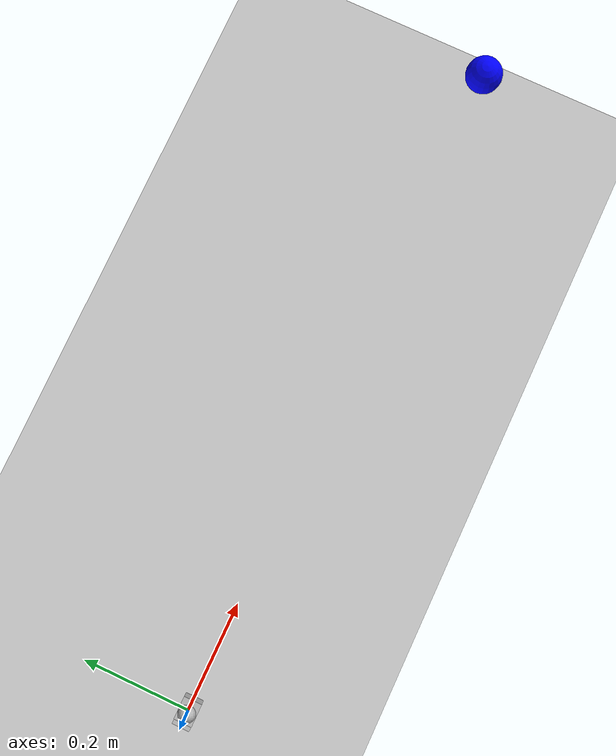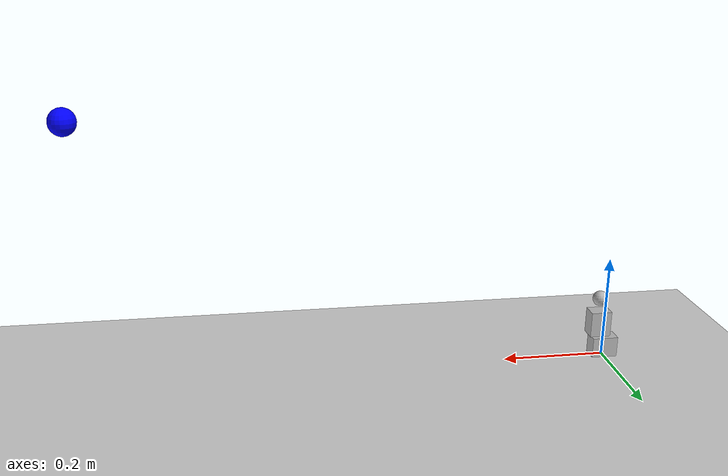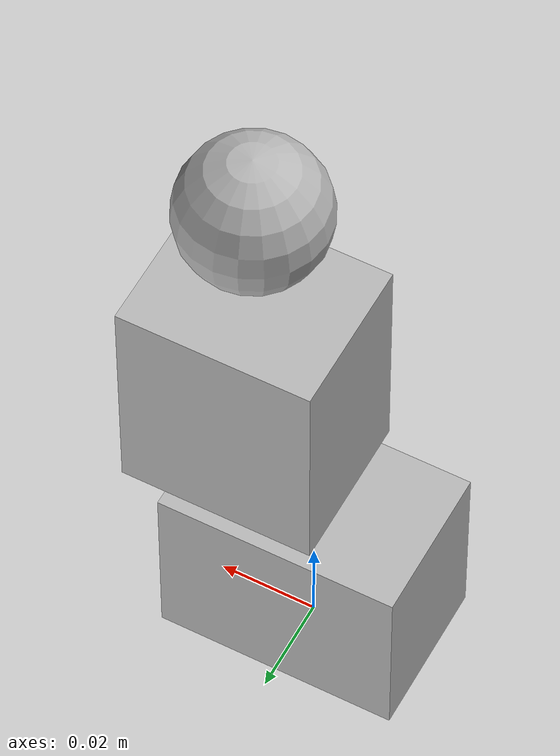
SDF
<?xml version="1.0"?>
<sdf version="1.4">
  <world name="default">
    <!-- Ground Plane -->
    <include>
      <uri>model://ground_plane</uri>
    </include>

    <include>
      <uri>model://sun</uri>
    </include>

    <!-- Robot -->
    <model name="pan_tilt">
      <static>false</static>
      <pose>0 0 0 0 0 0</pose>

      <link name="l_pan">
        <pose>0 0 0 0 0 0</pose>
        <inertial>
          <pose>0 0 0 0 0 0</pose>
          <mass>10000</mass>
        </inertial>
        <visual name="visual">
          <pose>0 0 0.020 0 0 0</pose>
          <geometry>
            <box><size>0.050 0.032 0.040</size></box>
          </geometry>
        </visual>
        <collision name="collision">
          <pose>0 0 0.020 0 0 0</pose>
          <geometry>
            <box><size>0.050 0.032 0.040</size></box>
          </geometry>
        </collision>
      </link>
      <link name="l_tilt">
        <pose>0.0125 0 0.045 0 0 0</pose>
        <inertial><mass>50</mass></inertial>
        <visual name="visual">
          <pose>0 0 0.025 0 0 0</pose>
          <geometry>
            <box><size>0.040 0.032 0.050</size></box>
          </geometry>
        </visual>
        <collision name="collision">
          <pose>0 0 0.025 0 0 0</pose>
          <geometry>
            <box><size>0.040 0.032 0.050</size></box>
          </geometry>
        </collision>
      </link>

      <link name="l_camera">
        <pose>0.0125 0 0.120 0 0 0</pose>
        <inertial><mass>0.01</mass></inertial>
        <visual name="visual">
          <pose>0 0 0 0 0 0</pose>
          <geometry>
            <sphere><radius>0.015</radius></sphere>
          </geometry>
        </visual>
        <collision name="collision">
          <pose>0 0 0 0 0 0</pose>
          <geometry>
            <sphere><radius>0.015</radius></sphere>
          </geometry>
        </collision>

        <sensor name="camera" type="camera">
          <camera>
            <horizontal_fov>1.047</horizontal_fov>
            <image>
              <width>320</width>
              <height>240</height>
            </image>
            <clip>
              <near>0.1</near>
              <far>100</far>
            </clip>
          </camera>
          <always_on>1</always_on>
          <update_rate>30</update_rate>
          <visualize>true</visualize>
        </sensor>
      </link>

      <joint type="revolute" name="j_pan">
        <pose>0.0125 0 0.040 0 0 0</pose>
        <parent>l_pan</parent>
        <child>l_tilt</child>
        <axis>
          <xyz>0 0 1</xyz>
          <limit>
            <upper>2.0943951023931954923084289221863</upper>  <!--  120 deg -->
            <lower>-2.0943951023931954923084289221863</lower> <!-- -120 deg -->
          </limit>
        </axis>
      </joint>
      <joint type="revolute" name="j_tilt">
        <pose>0 0 0.0375 0 0 0</pose>
        <parent>l_tilt</parent>
        <child>l_camera</child>
        <axis>
          <xyz>0 1 0</xyz>
          <limit>
            <upper>1.5707963267948966192313216916398</upper>  <!--  90 deg -->
            <lower>-1.5707963267948966192313216916398</lower> <!-- -90 deg -->
          </limit>
        </axis>
      </joint>

      <plugin name="pt_ach_ctl" filename="build/libpt_ach_ctl.so">
        <pan>j_pan</pan>
        <tilt>j_tilt</tilt>
      </plugin>
    </model>

    <model name="sought_sphere">
      <!-- pose gets taken care of by animator -->
      <pose>1 0 0.5 0 0 0</pose>
      <link name="link">
      	<visual name="visual">
      	  <geometry>
      	    <sphere><radius>0.025</radius></sphere>
      	  </geometry>
      	  <material>
      	    <ambient>0 0 1 1</ambient>
      	    <diffuse>0 0 1 1</diffuse>
      	    <specular>0.1 0.1 0.1 1</specular>
      	    <emissive>0 0 0 0</emissive>
      	  </material>
      	</visual>
      </link>
      <static>true</static>
    </model>

    <!-- Light Source -->
    <light type="directional" name="sun">
      <pose>0 0 10 0 0 0</pose>
      <diffuse>1.0 1.0 1.0 1</diffuse>
      <specular>0 0 0 1</specular>
      <attenuation>
        <range>20</range>
        <linear>0.01</linear>
        <constant>0.8</constant>
        <quadratic>0.0</quadratic>
      </attenuation>
      <direction>0.0 0.2 -8.0</direction>
      <cast_shadows>true</cast_shadows>
    </light>
  </world>
</sdf>
